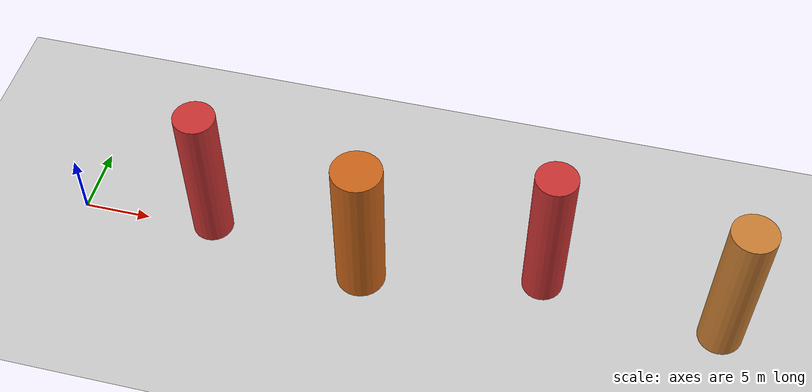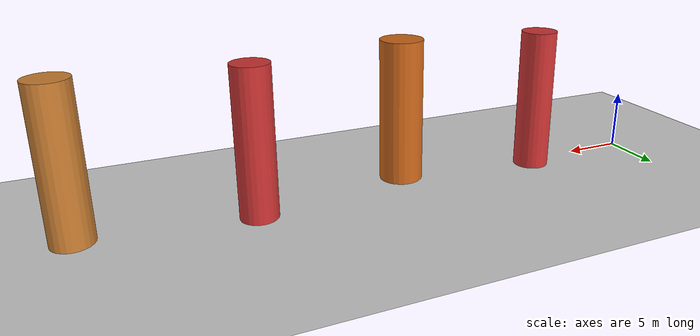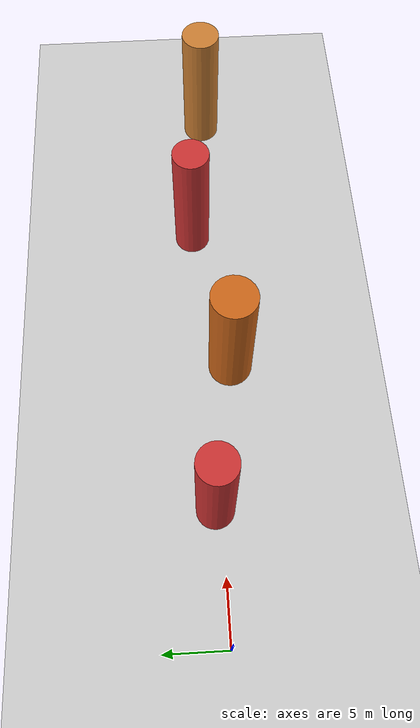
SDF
<?xml version="1.0" ?>
<sdf version="1.6">
  <world name="hil_flight_field">
    <!-- Ambient illumination & Sun -->
    <include>
      <uri>model://sun</uri>
    </include>
    <include>
      <uri>model://ground_plane</uri>
    </include>

    <!-- Physics Solver Configuration (100 Hz outer loop, 400 Hz inner physics) -->
    <physics type="ode">
      <max_step_size>0.0025</max_step_size>
      <real_time_factor>1.0</real_time_factor>
      <real_time_update_rate>400</real_time_update_rate>
      <ode>
        <solver>
          <type>quick</type>
          <iters>20</iters>
          <sor>1.3</sor>
        </solver>
        <constraints>
          <cfm>0.0</cfm>
          <erp>0.2</erp>
          <contact_max_correcting_vel>100.0</contact_max_correcting_vel>
          <contact_surface_layer>0.001</contact_surface_layer>
        </constraints>
      </ode>
    </physics>

    <!-- Cylindrical Obstacles for Act 1 Obstacle Avoidance Trajectory -->
    <!-- Obstacle 1: (x=10.0, y=0.5, r=1.5, h=12.0) -->
    <model name="cylinder_obs_1">
      <static>true</static>
      <pose>10.0 0.5 6.0 0 0 0</pose>
      <link name="link">
        <collision name="collision">
          <geometry>
            <cylinder><radius>1.5</radius><length>12.0</length></cylinder>
          </geometry>
        </collision>
        <visual name="visual">
          <geometry>
            <cylinder><radius>1.5</radius><length>12.0</length></cylinder>
          </geometry>
          <material><ambient>0.8 0.2 0.2 1.0</ambient></material>
        </visual>
      </link>
    </model>

    <!-- Obstacle 2: (x=22.0, y=-1.5, r=1.8, h=12.0) -->
    <model name="cylinder_obs_2">
      <static>true</static>
      <pose>22.0 -1.5 6.0 0 0 0</pose>
      <link name="link">
        <collision name="collision">
          <geometry>
            <cylinder><radius>1.8</radius><length>12.0</length></cylinder>
          </geometry>
        </collision>
        <visual name="visual">
          <geometry>
            <cylinder><radius>1.8</radius><length>12.0</length></cylinder>
          </geometry>
          <material><ambient>0.8 0.4 0.1 1.0</ambient></material>
        </visual>
      </link>
    </model>

    <!-- Obstacle 3: (x=35.0, y=1.0, r=1.5, h=12.0) -->
    <model name="cylinder_obs_3">
      <static>true</static>
      <pose>35.0 1.0 6.0 0 0 0</pose>
      <link name="link">
        <collision name="collision">
          <geometry>
            <cylinder><radius>1.5</radius><length>12.0</length></cylinder>
          </geometry>
        </collision>
        <visual name="visual">
          <geometry>
            <cylinder><radius>1.5</radius><length>12.0</length></cylinder>
          </geometry>
          <material><ambient>0.8 0.2 0.2 1.0</ambient></material>
        </visual>
      </link>
    </model>

    <!-- Obstacle 4: (x=48.0, y=-0.5, r=1.6, h=12.0) -->
    <model name="cylinder_obs_4">
      <static>true</static>
      <pose>48.0 -0.5 6.0 0 0 0</pose>
      <link name="link">
        <collision name="collision">
          <geometry>
            <cylinder><radius>1.6</radius><length>12.0</length></cylinder>
          </geometry>
        </collision>
        <visual name="visual">
          <geometry>
            <cylinder><radius>1.6</radius><length>12.0</length></cylinder>
          </geometry>
          <material><ambient>0.8 0.5 0.2 1.0</ambient></material>
        </visual>
      </link>
    </model>

  </world>
</sdf>
